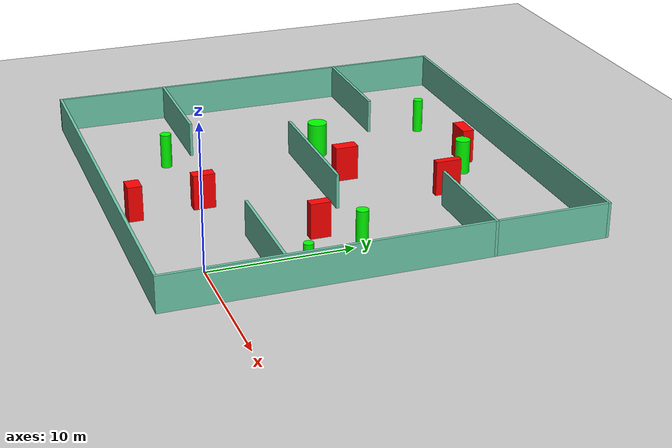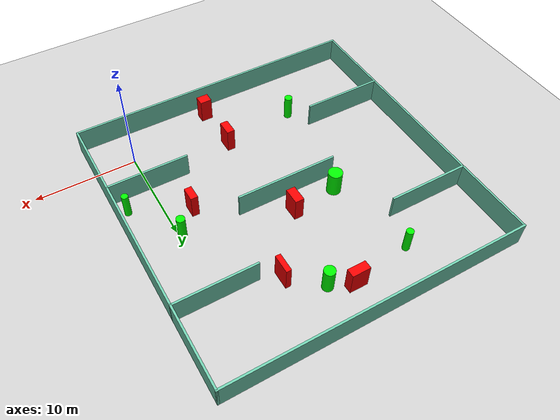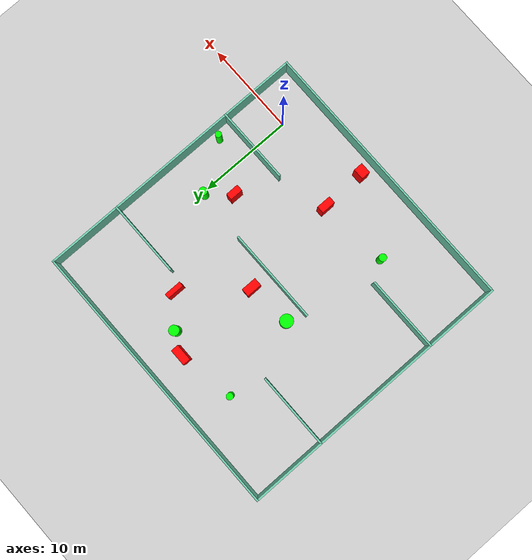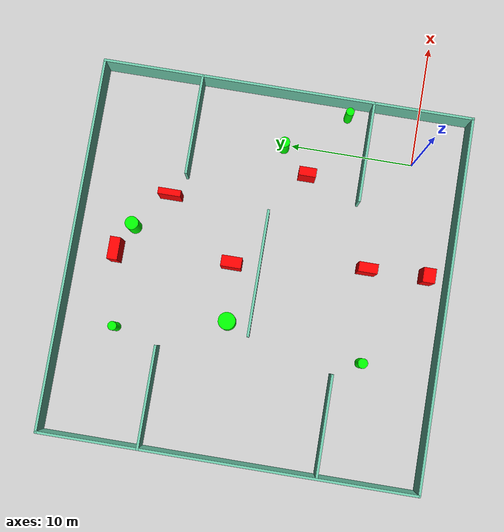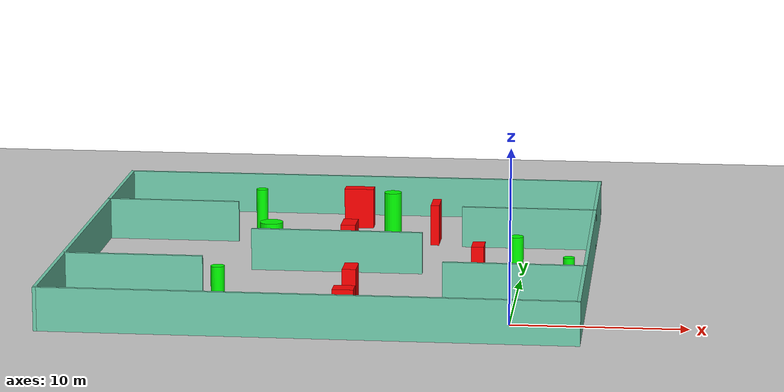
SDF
<sdf version="1.7">
 <world name="default">
  <light name="sun" type="directional">
   <pose>0 0 10 0 -0 0</pose>
   <diffuse>0.8 0.8 0.8 1</diffuse>
   <specular>0.2 0.2 0.2 1</specular>
   <attenuation>
    <range>1000</range>
    <constant>0.9</constant>
    <linear>0.01</linear>
    <quadratic>0.001</quadratic>
   </attenuation>
   <direction>-0.5 0.1 -0.9</direction>
   <spot><inner_angle>0</inner_angle><outer_angle>0</outer_angle><falloff>0</falloff></spot>
  </light>
  <model name="ground_plane">
   <static>1</static>
   <link name="link">
    <collision name="collision">
     <geometry><plane><normal>0 0 1</normal><size>100 100</size></plane></geometry>
     <surface>
      <contact><collide_bitmask>65535</collide_bitmask></contact>
      <friction><ode><mu>100</mu><mu2>50</mu2></ode></friction>
     </surface>
    </collision>
    <visual name="visual">
     <cast_shadows>0</cast_shadows>
     <geometry><plane><normal>0 0 1</normal><size>100 100</size></plane></geometry>
     <material>
      <script><uri>file://media/materials/scripts/gazebo.material</uri><name>Gazebo/Grey</name></script>
     </material>
    </visual>
   </link>
  </model>
  <gravity>0 0 -9.8</gravity>
  <magnetic_field>6e-06 2.3e-05 -4.2e-05</magnetic_field>
  <atmosphere type="adiabatic"/>
  <physics type="ode">
   <max_step_size>0.001</max_step_size>
   <real_time_factor>1</real_time_factor>
   <real_time_update_rate>1000</real_time_update_rate>
  </physics>
  <scene><ambient>0.4 0.4 0.4 1</ambient><background>0.7 0.7 0.7 1</background><shadows>1</shadows></scene>
  <spherical_coordinates>
   <surface_model>EARTH_WGS84</surface_model>
   <latitude_deg>0</latitude_deg>
   <longitude_deg>0</longitude_deg>
   <elevation>0</elevation>
   <heading_deg>0</heading_deg>
  </spherical_coordinates>
  <model name="my_base_walls">
   <link name="Wall_10">
    <collision name="Wall_10_Collision">
     <geometry><box><size>8.2 0.2 2.5</size></box></geometry>
     <pose>0 0 1.25 0 -0 0</pose>
    </collision>
    <visual name="Wall_10_Visual">
     <pose>0 0 1.25 0 -0 0</pose>
     <geometry><box><size>8.2 0.2 2.5</size></box></geometry>
     <material>
      <script><uri>file://media/materials/scripts/gazebo.material</uri><name>Gazebo/Grey</name></script>
      <ambient>0.435294 0.796078 0.67451 1</ambient>
     </material>
     <meta><layer>0</layer></meta>
    </visual>
    <pose>-11 -7 0 0 -0 0</pose>
   </link>
   <link name="Wall_12">
    <collision name="Wall_12_Collision">
     <geometry><box><size>8.2 0.2 2.5</size></box></geometry>
     <pose>0 0 1.25 0 -0 0</pose>
    </collision>
    <visual name="Wall_12_Visual">
     <pose>0 0 1.25 0 -0 0</pose>
     <geometry><box><size>8.2 0.2 2.5</size></box></geometry>
     <material>
      <script><uri>file://media/materials/scripts/gazebo.material</uri><name>Gazebo/Grey</name></script>
      <ambient>0.435294 0.796078 0.67451 1</ambient>
     </material>
     <meta><layer>0</layer></meta>
    </visual>
    <pose>-11 7 0 0 -0 0</pose>
   </link>
   <link name="Wall_14">
    <collision name="Wall_14_Collision">
     <geometry><box><size>8.2 0.2 2.5</size></box></geometry>
     <pose>0 0 1.25 0 -0 0</pose>
    </collision>
    <visual name="Wall_14_Visual">
     <pose>0 0 1.25 0 -0 0</pose>
     <geometry><box><size>8.2 0.2 2.5</size></box></geometry>
     <material>
      <script><uri>file://media/materials/scripts/gazebo.material</uri><name>Gazebo/Grey</name></script>
      <ambient>0.435294 0.796078 0.67451 1</ambient>
     </material>
     <meta><layer>0</layer></meta>
    </visual>
    <pose>11 7 0 0 -0 3.14159</pose>
   </link>
   <link name="Wall_16">
    <collision name="Wall_16_Collision">
     <geometry><box><size>10.2 0.2 2.5</size></box></geometry>
     <pose>0 0 1.25 0 -0 0</pose>
    </collision>
    <visual name="Wall_16_Visual">
     <pose>0 0 1.25 0 -0 0</pose>
     <geometry><box><size>10.2 0.2 2.5</size></box></geometry>
     <material>
      <script><uri>file://media/materials/scripts/gazebo.material</uri><name>Gazebo/Grey</name></script>
      <ambient>0.435294 0.796078 0.67451 1</ambient>
     </material>
     <meta><layer>0</layer></meta>
    </visual>
    <pose>0 0 0 0 -0 3.14159</pose>
   </link>
   <link name="Wall_2">
    <collision name="Wall_2_Collision">
     <geometry><box><size>30.2 0.2 2.5</size></box></geometry>
     <pose>0 0 1.25 0 -0 0</pose>
    </collision>
    <visual name="Wall_2_Visual">
     <pose>0 0 1.25 0 -0 0</pose>
     <geometry><box><size>30.2 0.2 2.5</size></box></geometry>
     <material>
      <script><uri>file://media/materials/scripts/gazebo.material</uri><name>Gazebo/Grey</name></script>
      <ambient>0.435294 0.796078 0.67451 1</ambient>
     </material>
     <meta><layer>0</layer></meta>
    </visual>
    <pose>0 -15 0 0 -0 3.14159</pose>
   </link>
   <link name="Wall_3">
    <collision name="Wall_3_Collision">
     <geometry><box><size>30.2 0.2 2.5</size></box></geometry>
     <pose>0 0 1.25 0 -0 0</pose>
    </collision>
    <visual name="Wall_3_Visual">
     <pose>0 0 1.25 0 -0 0</pose>
     <geometry><box><size>30.2 0.2 2.5</size></box></geometry>
     <material>
      <script><uri>file://media/materials/scripts/gazebo.material</uri><name>Gazebo/Grey</name></script>
      <ambient>0.435294 0.796078 0.67451 1</ambient>
     </material>
     <meta><layer>0</layer></meta>
    </visual>
    <pose>-15 0 0 0 -0 1.5708</pose>
   </link>
   <link name="Wall_4">
    <collision name="Wall_4_Collision">
     <geometry><box><size>30.2 0.2 2.5</size></box></geometry>
     <pose>0 0 1.25 0 -0 0</pose>
    </collision>
    <visual name="Wall_4_Visual">
     <pose>0 0 1.25 0 -0 0</pose>
     <geometry><box><size>30.2 0.2 2.5</size></box></geometry>
     <material>
      <script><uri>file://media/materials/scripts/gazebo.material</uri><name>Gazebo/Grey</name></script>
      <ambient>0.435294 0.796078 0.67451 1</ambient>
     </material>
     <meta><layer>0</layer></meta>
    </visual>
    <pose>0 15 0 0 -0 0</pose>
   </link>
   <link name="Wall_6">
    <collision name="Wall_6_Collision">
     <geometry><box><size>30.2 0.2 2.5</size></box></geometry>
     <pose>0 0 1.25 0 -0 0</pose>
    </collision>
    <visual name="Wall_6_Visual">
     <pose>0 0 1.25 0 -0 0</pose>
     <geometry><box><size>30.2 0.2 2.5</size></box></geometry>
     <material>
      <script><uri>file://media/materials/scripts/gazebo.material</uri><name>Gazebo/Grey</name></script>
      <ambient>0.435294 0.796078 0.67451 1</ambient>
     </material>
     <meta><layer>0</layer></meta>
    </visual>
    <pose>15 0 0 0 -0 1.5708</pose>
   </link>
   <link name="Wall_8">
    <collision name="Wall_8_Collision">
     <geometry><box><size>8.2 0.2 2.5</size></box></geometry>
     <pose>0 0 1.25 0 -0 0</pose>
    </collision>
    <visual name="Wall_8_Visual">
     <pose>0 0 1.25 0 -0 0</pose>
     <geometry><box><size>8.2 0.2 2.5</size></box></geometry>
     <material>
      <script><uri>file://media/materials/scripts/gazebo.material</uri><name>Gazebo/Grey</name></script>
      <ambient>0.435294 0.796078 0.67451 1</ambient>
     </material>
     <meta><layer>0</layer></meta>
    </visual>
    <pose>11 -7 0 0 -0 3.14159</pose>
   </link>
   <static>1</static>
   <pose>-11 11 0 0 -0 0</pose>
  </model>
  <model name="cylinder1">
   <static>1</static>
   <link name="link">
    <inertial>
     <mass>1</mass>
     <inertia><ixx>0.5</ixx><ixy>0</ixy><ixz>0</ixz><iyy>0.5</iyy><iyz>0</iyz><izz>1</izz></inertia>
    </inertial>
    <collision name="collision">
     <geometry><cylinder><radius>0.35512660550622643</radius><length>2.5</length></cylinder></geometry>
    </collision>
    <visual name="visual">
     <geometry><cylinder><radius>0.35512660550622643</radius><length>2.5</length></cylinder></geometry>
     <material>
      <ambient>0 1 0 1</ambient>
      <diffuse>0 1 0 1</diffuse>
      <specular>0.1 0.1 0.1 1</specular>
      <emissive>0 0 0 0</emissive>
     </material>
    </visual>
   </link>
   <pose>-16.97116472211045 21.61387756356174 1.25 0 0 0</pose>
  </model>
  <model name="cylinder2">
   <static>1</static>
   <link name="link">
    <inertial>
     <mass>1</mass>
     <inertia><ixx>0.5</ixx><ixy>0</ixy><ixz>0</ixz><iyy>0.5</iyy><iyz>0</iyz><izz>1</izz></inertia>
    </inertial>
    <collision name="collision">
     <geometry><cylinder><radius>0.5387191611477021</radius><length>2.5</length></cylinder></geometry>
    </collision>
    <visual name="visual">
     <geometry><cylinder><radius>0.5387191611477021</radius><length>2.5</length></cylinder></geometry>
     <material>
      <ambient>0 1 0 1</ambient>
      <diffuse>0 1 0 1</diffuse>
      <specular>0.1 0.1 0.1 1</specular>
      <emissive>0 0 0 0</emissive>
     </material>
    </visual>
   </link>
   <pose>-8.723590776182183 21.54190865561591 1.25 0 0 0</pose>
  </model>
  <model name="cylinder3">
   <static>1</static>
   <link name="link">
    <inertial>
     <mass>1</mass>
     <inertia><ixx>0.5</ixx><ixy>0</ixy><ixz>0</ixz><iyy>0.5</iyy><iyz>0</iyz><izz>1</izz></inertia>
    </inertial>
    <collision name="collision">
     <geometry><cylinder><radius>0.6958679770627704</radius><length>2.5</length></cylinder></geometry>
    </collision>
    <visual name="visual">
     <geometry><cylinder><radius>0.6958679770627704</radius><length>2.5</length></cylinder></geometry>
     <material>
      <ambient>0 1 0 1</ambient>
      <diffuse>0 1 0 1</diffuse>
      <specular>0.1 0.1 0.1 1</specular>
      <emissive>0 0 0 0</emissive>
     </material>
    </visual>
   </link>
   <pose>-15.146876981880848 12.817647420249028 1.25 0 0 0</pose>
  </model>
  <model name="cylinder4">
   <static>1</static>
   <link name="link">
    <inertial>
     <mass>1</mass>
     <inertia><ixx>0.5</ixx><ixy>0</ixy><ixz>0</ixz><iyy>0.5</iyy><iyz>0</iyz><izz>1</izz></inertia>
    </inertial>
    <collision name="collision">
     <geometry><cylinder><radius>0.3961968693797472</radius><length>2.5</length></cylinder></geometry>
    </collision>
    <visual name="visual">
     <geometry><cylinder><radius>0.3961968693797472</radius><length>2.5</length></cylinder></geometry>
     <material>
      <ambient>0 1 0 1</ambient>
      <diffuse>0 1 0 1</diffuse>
      <specular>0.1 0.1 0.1 1</specular>
      <emissive>0 0 0 0</emissive>
     </material>
    </visual>
   </link>
   <pose>-16.68243666487013 1.802228175963192 1.25 0 0 0</pose>
  </model>
  <model name="cylinder5">
   <static>1</static>
   <link name="link">
    <inertial>
     <mass>1</mass>
     <inertia><ixx>0.5</ixx><ixy>0</ixy><ixz>0</ixz><iyy>0.5</iyy><iyz>0</iyz><izz>1</izz></inertia>
    </inertial>
    <collision name="collision">
     <geometry><cylinder><radius>0.42024372611813177</radius><length>2.5</length></cylinder></geometry>
    </collision>
    <visual name="visual">
     <geometry><cylinder><radius>0.42024372611813177</radius><length>2.5</length></cylinder></geometry>
     <material>
      <ambient>0 1 0 1</ambient>
      <diffuse>0 1 0 1</diffuse>
      <specular>0.1 0.1 0.1 1</specular>
      <emissive>0 0 0 0</emissive>
     </material>
    </visual>
   </link>
   <pose>-0.31064082068868615 10.615116040618968 1.25 0 0 0</pose>
  </model>
  <model name="cylinder6">
   <static>1</static>
   <link name="link">
    <inertial>
     <mass>1</mass>
     <inertia><ixx>0.5</ixx><ixy>0</ixy><ixz>0</ixz><iyy>0.5</iyy><iyz>0</iyz><izz>1</izz></inertia>
    </inertial>
    <collision name="collision">
     <geometry><cylinder><radius>0.3313306313867783</radius><length>2.5</length></cylinder></geometry>
    </collision>
    <visual name="visual">
     <geometry><cylinder><radius>0.3313306313867783</radius><length>2.5</length></cylinder></geometry>
     <material>
      <ambient>0 1 0 1</ambient>
      <diffuse>0 1 0 1</diffuse>
      <specular>0.1 0.1 0.1 1</specular>
      <emissive>0 0 0 0</emissive>
     </material>
    </visual>
   </link>
   <pose>2.991991164509585 5.808284226783071 1.25 0 0 0</pose>
  </model>
  <model name="box1">
   <static>1</static>
   <link name="link">
    <inertial>
     <mass>1</mass>
     <inertia><ixx>0.083</ixx><ixy>0</ixy><ixz>0</ixz><iyy>0.083</iyy><iyz>0</iyz><izz>0.083</izz></inertia>
    </inertial>
    <collision name="collision">
     <geometry><box><size>0.8806801521651799 1.6450042323676093 2.5</size></box></geometry>
    </collision>
    <visual name="visual">
     <geometry><box><size>0.8806801521651799 1.6450042323676093 2.5</size></box></geometry>
     <material>
      <ambient>1 0 0 1</ambient>
      <diffuse>1 0 0 1</diffuse>
      <specular>0.1 0.1 0.1 1</specular>
      <emissive>0 0 0 0</emissive>
     </material>
    </visual>
    <sensor name="my_contact" type="contact">
     <contact><collision>box_collision</collision><topic>__default_topic__</topic></contact>
    </sensor>
   </link>
   <pose>-10.489330082162919 13.23379952259258 1.25 0 0 0</pose>
  </model>
  <model name="box2">
   <static>1</static>
   <link name="link">
    <inertial>
     <mass>1</mass>
     <inertia><ixx>0.083</ixx><ixy>0</ixy><ixz>0</ixz><iyy>0.083</iyy><iyz>0</iyz><izz>0.083</izz></inertia>
    </inertial>
    <collision name="collision">
     <geometry><box><size>0.5171060206468834 1.83705116446178 2.5</size></box></geometry>
    </collision>
    <visual name="visual">
     <geometry><box><size>0.5171060206468834 1.83705116446178 2.5</size></box></geometry>
     <material>
      <ambient>1 0 0 1</ambient>
      <diffuse>1 0 0 1</diffuse>
      <specular>0.1 0.1 0.1 1</specular>
      <emissive>0 0 0 0</emissive>
     </material>
    </visual>
    <sensor name="my_contact" type="contact">
     <contact><collision>box_collision</collision><topic>__default_topic__</topic></contact>
    </sensor>
   </link>
   <pose>-5.787720587378843 19.02303478522229 1.25 0 0 0</pose>
  </model>
  <model name="box3">
   <static>1</static>
   <link name="link">
    <inertial>
     <mass>1</mass>
     <inertia><ixx>0.083</ixx><ixy>0</ixy><ixz>0</ixz><iyy>0.083</iyy><iyz>0</iyz><izz>0.083</izz></inertia>
    </inertial>
    <collision name="collision">
     <geometry><box><size>0.7149234882551092 1.4033778846361524 2.5</size></box></geometry>
    </collision>
    <visual name="visual">
     <geometry><box><size>0.7149234882551092 1.4033778846361524 2.5</size></box></geometry>
     <material>
      <ambient>1 0 0 1</ambient>
      <diffuse>1 0 0 1</diffuse>
      <specular>0.1 0.1 0.1 1</specular>
      <emissive>0 0 0 0</emissive>
     </material>
    </visual>
    <sensor name="my_contact" type="contact">
     <contact><collision>box_collision</collision><topic>__default_topic__</topic></contact>
    </sensor>
   </link>
   <pose>-2.3895874636152463 8.41302166476218 1.25 0 0 0</pose>
  </model>
  <model name="box4">
   <static>1</static>
   <link name="link">
    <inertial>
     <mass>1</mass>
     <inertia><ixx>0.083</ixx><ixy>0</ixy><ixz>0</ixz><iyy>0.083</iyy><iyz>0</iyz><izz>0.083</izz></inertia>
    </inertial>
    <collision name="collision">
     <geometry><box><size>1.8067106935489956 0.8388750552220844 2.5</size></box></geometry>
    </collision>
    <visual name="visual">
     <geometry><box><size>1.8067106935489956 0.8388750552220844 2.5</size></box></geometry>
     <material>
      <ambient>1 0 0 1</ambient>
      <diffuse>1 0 0 1</diffuse>
      <specular>0.1 0.1 0.1 1</specular>
      <emissive>0 0 0 0</emissive>
     </material>
    </visual>
    <sensor name="my_contact" type="contact">
     <contact><collision>box_collision</collision><topic>__default_topic__</topic></contact>
    </sensor>
   </link>
   <pose>-10.921037197533483 22.587995758976795 1.25 0 0 0</pose>
  </model>
  <model name="box5">
   <static>1</static>
   <link name="link">
    <inertial>
     <mass>1</mass>
     <inertia><ixx>0.083</ixx><ixy>0</ixy><ixz>0</ixz><iyy>0.083</iyy><iyz>0</iyz><izz>0.083</izz></inertia>
    </inertial>
    <collision name="collision">
     <geometry><box><size>1.177274966371342 0.9924642486113673 2.5</size></box></geometry>
    </collision>
    <visual name="visual">
     <geometry><box><size>1.177274966371342 0.9924642486113673 2.5</size></box></geometry>
     <material>
      <ambient>1 0 0 1</ambient>
      <diffuse>1 0 0 1</diffuse>
      <specular>0.1 0.1 0.1 1</specular>
      <emissive>0 0 0 0</emissive>
     </material>
    </visual>
    <sensor name="my_contact" type="contact">
     <contact><collision>box_collision</collision><topic>__default_topic__</topic></contact>
    </sensor>
   </link>
   <pose>-9.018513592926945 -2.345082939782558 1.25 0 0 0</pose>
  </model>
  <model name="box6">
   <static>1</static>
   <link name="link">
    <inertial>
     <mass>1</mass>
     <inertia><ixx>0.083</ixx><ixy>0</ixy><ixz>0</ixz><iyy>0.083</iyy><iyz>0</iyz><izz>0.083</izz></inertia>
    </inertial>
    <collision name="collision">
     <geometry><box><size>0.788462958643313 1.541841816485537 2.5</size></box></geometry>
    </collision>
    <visual name="visual">
     <geometry><box><size>0.788462958643313 1.541841816485537 2.5</size></box></geometry>
     <material>
      <ambient>1 0 0 1</ambient>
      <diffuse>1 0 0 1</diffuse>
      <specular>0.1 0.1 0.1 1</specular>
      <emissive>0 0 0 0</emissive>
     </material>
    </visual>
    <sensor name="my_contact" type="contact">
     <contact><collision>box_collision</collision><topic>__default_topic__</topic></contact>
    </sensor>
   </link>
   <pose>-9.201375755890718 2.4942996348890993 1.25 0 0 0</pose>
  </model>
 </world>
</sdf>
